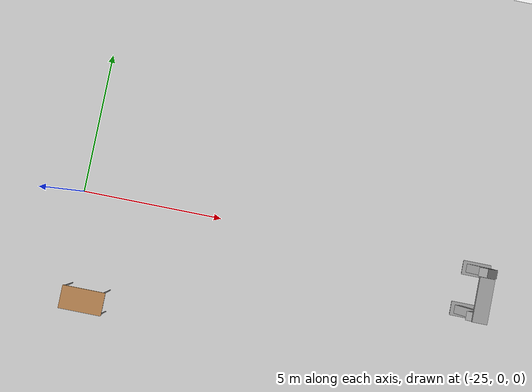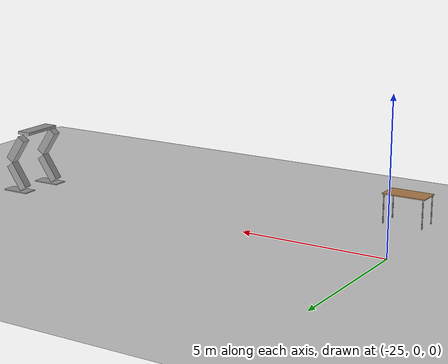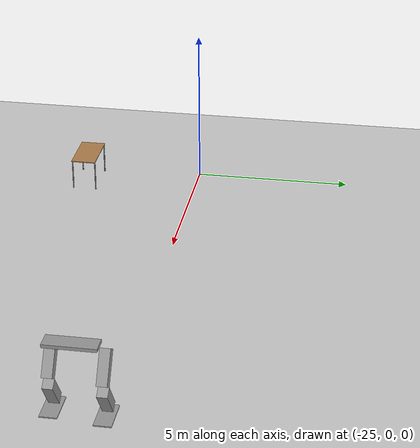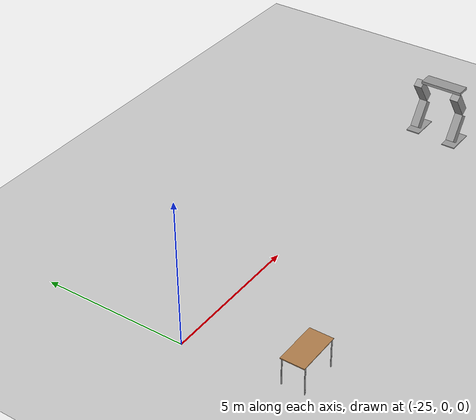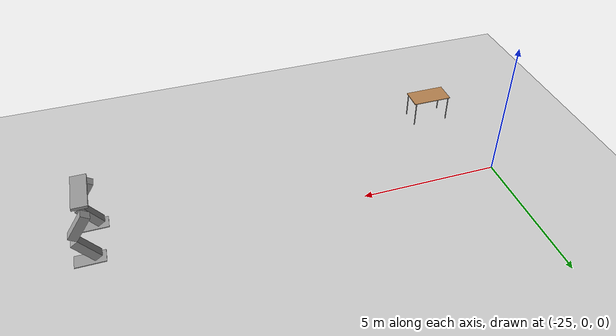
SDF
<sdf version="1.6">
 <world name="default">
  <model name="ground_plane">
   <static>1</static>
   <link name="link">
    <collision name="collision">
     <geometry><plane><normal>0 0 1</normal><size>100 100</size></plane></geometry>
     <surface>
      <contact><collide_bitmask>65535</collide_bitmask></contact>
      <friction><ode><mu>100</mu><mu2>50</mu2></ode></friction>
     </surface>
    </collision>
    <visual name="visual">
     <cast_shadows>0</cast_shadows>
     <geometry><plane><normal>0 0 1</normal><size>100 100</size></plane></geometry>
     <material>
      <script><uri>file://media/materials/scripts/gazebo.material</uri><name>Gazebo/Grey</name></script>
     </material>
    </visual>
   </link>
  </model>
  <model name="Humanoid_0">
   <link name="link_0">
    <pose>-0.048492 0.285713 -0.132344 0 -0 0</pose>
    <inertial>
     <mass>1</mass>
     <inertia>
      <ixx>0.166667</ixx>
      <ixy>0</ixy>
      <ixz>0</ixz>
      <iyy>0.166667</iyy>
      <iyz>0</iyz>
      <izz>0.166667</izz>
     </inertia>
    </inertial>
    <visual name="visual">
     <geometry><box><size>1 0.5 0.3</size></box></geometry>
     <material>
      <lighting>1</lighting>
      <script><uri>file://media/materials/scripts/gazebo.material</uri><name>Gazebo/Grey</name></script>
      <shader type="pixel"><normal_map>__default__</normal_map></shader>
      <ambient>0.3 0.3 0.3 1</ambient>
      <diffuse>0.7 0.7 0.7 1</diffuse>
      <specular>0.01 0.01 0.01 1</specular>
      <emissive>0 0 0 1</emissive>
     </material>
    </visual>
    <collision name="collision">
     <geometry><box><size>1 0.5 0.3</size></box></geometry>
     <surface>
      <friction>
       <ode><mu>1</mu><mu2>1</mu2><fdir1>0 0 0</fdir1><slip1>0</slip1><slip2>0</slip2></ode>
       <torsional>
        <coefficient>1</coefficient>
        <patch_radius>0</patch_radius>
        <surface_radius>0</surface_radius>
        <use_patch_radius>1</use_patch_radius>
        <ode><slip>0</slip></ode>
       </torsional>
      </friction>
      <bounce><restitution_coefficient>0</restitution_coefficient><threshold>1e+06</threshold></bounce>
      <contact>
       <collide_without_contact>0</collide_without_contact>
       <collide_without_contact_bitmask>1</collide_without_contact_bitmask>
       <collide_bitmask>1</collide_bitmask>
       <ode>
        <soft_cfm>0</soft_cfm>
        <soft_erp>0.2</soft_erp>
        <kp>1e+13</kp>
        <kd>1</kd>
        <max_vel>0.01</max_vel>
        <min_depth>0</min_depth>
       </ode>
       <bullet>
        <split_impulse>1</split_impulse>
        <split_impulse_penetration_threshold>-0.01</split_impulse_penetration_threshold>
        <soft_cfm>0</soft_cfm>
        <soft_erp>0.2</soft_erp>
        <kp>1e+13</kp>
        <kd>1</kd>
       </bullet>
      </contact>
     </surface>
    </collision>
   </link>
   <link name="link_0_clone">
    <pose>0.107629 1.78606 -0.132344 0 -0 0</pose>
    <inertial>
     <mass>1</mass>
     <inertia>
      <ixx>0.166667</ixx>
      <ixy>0</ixy>
      <ixz>0</ixz>
      <iyy>0.166667</iyy>
      <iyz>0</iyz>
      <izz>0.166667</izz>
     </inertia>
    </inertial>
    <visual name="visual">
     <geometry><box><size>1 0.5 0.3</size></box></geometry>
     <material>
      <lighting>1</lighting>
      <script><uri>file://media/materials/scripts/gazebo.material</uri><name>Gazebo/Grey</name></script>
      <shader type="pixel"><normal_map>__default__</normal_map></shader>
      <ambient>0.3 0.3 0.3 1</ambient>
      <diffuse>0.7 0.7 0.7 1</diffuse>
      <specular>0.01 0.01 0.01 1</specular>
      <emissive>0 0 0 1</emissive>
     </material>
    </visual>
    <collision name="collision">
     <geometry><box><size>1 0.5 0.3</size></box></geometry>
     <surface>
      <friction>
       <ode><mu>1</mu><mu2>1</mu2><fdir1>0 0 0</fdir1><slip1>0</slip1><slip2>0</slip2></ode>
       <torsional>
        <coefficient>1</coefficient>
        <patch_radius>0</patch_radius>
        <surface_radius>0</surface_radius>
        <use_patch_radius>1</use_patch_radius>
        <ode><slip>0</slip></ode>
       </torsional>
      </friction>
      <bounce><restitution_coefficient>0</restitution_coefficient><threshold>1e+06</threshold></bounce>
      <contact>
       <collide_without_contact>0</collide_without_contact>
       <collide_without_contact_bitmask>1</collide_without_contact_bitmask>
       <collide_bitmask>1</collide_bitmask>
       <ode>
        <soft_cfm>0</soft_cfm>
        <soft_erp>0.2</soft_erp>
        <kp>1e+13</kp>
        <kd>1</kd>
        <max_vel>0.01</max_vel>
        <min_depth>0</min_depth>
       </ode>
       <bullet>
        <split_impulse>1</split_impulse>
        <split_impulse_penetration_threshold>-0.01</split_impulse_penetration_threshold>
        <soft_cfm>0</soft_cfm>
        <soft_erp>0.2</soft_erp>
        <kp>1e+13</kp>
        <kd>1</kd>
       </bullet>
      </contact>
     </surface>
    </collision>
   </link>
   <link name="link_1">
    <pose>-0.048492 0.285713 0.51502 0 0.6 0</pose>
    <inertial>
     <mass>1</mass>
     <inertia>
      <ixx>0.166667</ixx>
      <ixy>0</ixy>
      <ixz>0</ixz>
      <iyy>0.166667</iyy>
      <iyz>0</iyz>
      <izz>0.166667</izz>
     </inertia>
    </inertial>
    <visual name="visual">
     <geometry><box><size>0.3 0.3 1</size></box></geometry>
     <material>
      <lighting>1</lighting>
      <script><uri>file://media/materials/scripts/gazebo.material</uri><name>Gazebo/Grey</name></script>
      <shader type="pixel"><normal_map>__default__</normal_map></shader>
      <ambient>0.3 0.3 0.3 1</ambient>
      <diffuse>0.7 0.7 0.7 1</diffuse>
      <specular>0.01 0.01 0.01 1</specular>
      <emissive>0 0 0 1</emissive>
     </material>
    </visual>
    <collision name="collision">
     <geometry><box><size>0.3 0.3 1</size></box></geometry>
     <surface>
      <friction>
       <ode><mu>1</mu><mu2>1</mu2><fdir1>0 0 0</fdir1><slip1>0</slip1><slip2>0</slip2></ode>
       <torsional>
        <coefficient>1</coefficient>
        <patch_radius>0</patch_radius>
        <surface_radius>0</surface_radius>
        <use_patch_radius>1</use_patch_radius>
        <ode><slip>0</slip></ode>
       </torsional>
      </friction>
      <bounce><restitution_coefficient>0</restitution_coefficient><threshold>1e+06</threshold></bounce>
      <contact>
       <collide_without_contact>0</collide_without_contact>
       <collide_without_contact_bitmask>1</collide_without_contact_bitmask>
       <collide_bitmask>1</collide_bitmask>
       <ode>
        <soft_cfm>0</soft_cfm>
        <soft_erp>0.2</soft_erp>
        <kp>1e+13</kp>
        <kd>1</kd>
        <max_vel>0.01</max_vel>
        <min_depth>0</min_depth>
       </ode>
       <bullet>
        <split_impulse>1</split_impulse>
        <split_impulse_penetration_threshold>-0.01</split_impulse_penetration_threshold>
        <soft_cfm>0</soft_cfm>
        <soft_erp>0.2</soft_erp>
        <kp>1e+13</kp>
        <kd>1</kd>
       </bullet>
      </contact>
     </surface>
    </collision>
   </link>
   <link name="link_1_clone">
    <pose>-0.048492 0.285713 1.50975 0 -0.6 0</pose>
    <inertial>
     <mass>1</mass>
     <inertia>
      <ixx>0.166667</ixx>
      <ixy>0</ixy>
      <ixz>0</ixz>
      <iyy>0.166667</iyy>
      <iyz>0</iyz>
      <izz>0.166667</izz>
     </inertia>
    </inertial>
    <visual name="visual">
     <geometry><box><size>0.3 0.3 1</size></box></geometry>
     <material>
      <lighting>1</lighting>
      <script><uri>file://media/materials/scripts/gazebo.material</uri><name>Gazebo/Grey</name></script>
      <shader type="pixel"><normal_map>__default__</normal_map></shader>
      <ambient>0.3 0.3 0.3 1</ambient>
      <diffuse>0.7 0.7 0.7 1</diffuse>
      <specular>0.01 0.01 0.01 1</specular>
      <emissive>0 0 0 1</emissive>
     </material>
    </visual>
    <collision name="collision">
     <geometry><box><size>0.3 0.3 1</size></box></geometry>
     <surface>
      <friction>
       <ode><mu>1</mu><mu2>1</mu2><fdir1>0 0 0</fdir1><slip1>0</slip1><slip2>0</slip2></ode>
       <torsional>
        <coefficient>1</coefficient>
        <patch_radius>0</patch_radius>
        <surface_radius>0</surface_radius>
        <use_patch_radius>1</use_patch_radius>
        <ode><slip>0</slip></ode>
       </torsional>
      </friction>
      <bounce><restitution_coefficient>0</restitution_coefficient><threshold>1e+06</threshold></bounce>
      <contact>
       <collide_without_contact>0</collide_without_contact>
       <collide_without_contact_bitmask>1</collide_without_contact_bitmask>
       <collide_bitmask>1</collide_bitmask>
       <ode>
        <soft_cfm>0</soft_cfm>
        <soft_erp>0.2</soft_erp>
        <kp>1e+13</kp>
        <kd>1</kd>
        <max_vel>0.01</max_vel>
        <min_depth>0</min_depth>
       </ode>
       <bullet>
        <split_impulse>1</split_impulse>
        <split_impulse_penetration_threshold>-0.01</split_impulse_penetration_threshold>
        <soft_cfm>0</soft_cfm>
        <soft_erp>0.2</soft_erp>
        <kp>1e+13</kp>
        <kd>1</kd>
       </bullet>
      </contact>
     </surface>
    </collision>
   </link>
   <link name="link_1_clone_0">
    <pose>0.107629 1.78606 0.51502 0 0.6 0</pose>
    <inertial>
     <mass>1</mass>
     <inertia>
      <ixx>0.166667</ixx>
      <ixy>0</ixy>
      <ixz>0</ixz>
      <iyy>0.166667</iyy>
      <iyz>0</iyz>
      <izz>0.166667</izz>
     </inertia>
    </inertial>
    <visual name="visual">
     <geometry><box><size>0.3 0.3 1</size></box></geometry>
     <material>
      <lighting>1</lighting>
      <script><uri>file://media/materials/scripts/gazebo.material</uri><name>Gazebo/Grey</name></script>
      <shader type="pixel"><normal_map>__default__</normal_map></shader>
      <ambient>0.3 0.3 0.3 1</ambient>
      <diffuse>0.7 0.7 0.7 1</diffuse>
      <specular>0.01 0.01 0.01 1</specular>
      <emissive>0 0 0 1</emissive>
     </material>
    </visual>
    <collision name="collision">
     <geometry><box><size>0.3 0.3 1</size></box></geometry>
     <surface>
      <friction>
       <ode><mu>1</mu><mu2>1</mu2><fdir1>0 0 0</fdir1><slip1>0</slip1><slip2>0</slip2></ode>
       <torsional>
        <coefficient>1</coefficient>
        <patch_radius>0</patch_radius>
        <surface_radius>0</surface_radius>
        <use_patch_radius>1</use_patch_radius>
        <ode><slip>0</slip></ode>
       </torsional>
      </friction>
      <bounce><restitution_coefficient>0</restitution_coefficient><threshold>1e+06</threshold></bounce>
      <contact>
       <collide_without_contact>0</collide_without_contact>
       <collide_without_contact_bitmask>1</collide_without_contact_bitmask>
       <collide_bitmask>1</collide_bitmask>
       <ode>
        <soft_cfm>0</soft_cfm>
        <soft_erp>0.2</soft_erp>
        <kp>1e+13</kp>
        <kd>1</kd>
        <max_vel>0.01</max_vel>
        <min_depth>0</min_depth>
       </ode>
       <bullet>
        <split_impulse>1</split_impulse>
        <split_impulse_penetration_threshold>-0.01</split_impulse_penetration_threshold>
        <soft_cfm>0</soft_cfm>
        <soft_erp>0.2</soft_erp>
        <kp>1e+13</kp>
        <kd>1</kd>
       </bullet>
      </contact>
     </surface>
    </collision>
   </link>
   <link name="link_1_clone_clone">
    <pose>0.107629 1.78606 1.50975 0 -0.6 0</pose>
    <inertial>
     <mass>1</mass>
     <inertia>
      <ixx>0.166667</ixx>
      <ixy>0</ixy>
      <ixz>0</ixz>
      <iyy>0.166667</iyy>
      <iyz>0</iyz>
      <izz>0.166667</izz>
     </inertia>
    </inertial>
    <visual name="visual">
     <geometry><box><size>0.3 0.3 1</size></box></geometry>
     <material>
      <lighting>1</lighting>
      <script><uri>file://media/materials/scripts/gazebo.material</uri><name>Gazebo/Grey</name></script>
      <shader type="pixel"><normal_map>__default__</normal_map></shader>
      <ambient>0.3 0.3 0.3 1</ambient>
      <diffuse>0.7 0.7 0.7 1</diffuse>
      <specular>0.01 0.01 0.01 1</specular>
      <emissive>0 0 0 1</emissive>
     </material>
    </visual>
    <collision name="collision">
     <geometry><box><size>0.3 0.3 1</size></box></geometry>
     <surface>
      <friction>
       <ode><mu>1</mu><mu2>1</mu2><fdir1>0 0 0</fdir1><slip1>0</slip1><slip2>0</slip2></ode>
       <torsional>
        <coefficient>1</coefficient>
        <patch_radius>0</patch_radius>
        <surface_radius>0</surface_radius>
        <use_patch_radius>1</use_patch_radius>
        <ode><slip>0</slip></ode>
       </torsional>
      </friction>
      <bounce><restitution_coefficient>0</restitution_coefficient><threshold>1e+06</threshold></bounce>
      <contact>
       <collide_without_contact>0</collide_without_contact>
       <collide_without_contact_bitmask>1</collide_without_contact_bitmask>
       <collide_bitmask>1</collide_bitmask>
       <ode>
        <soft_cfm>0</soft_cfm>
        <soft_erp>0.2</soft_erp>
        <kp>1e+13</kp>
        <kd>1</kd>
        <max_vel>0.01</max_vel>
        <min_depth>0</min_depth>
       </ode>
       <bullet>
        <split_impulse>1</split_impulse>
        <split_impulse_penetration_threshold>-0.01</split_impulse_penetration_threshold>
        <soft_cfm>0</soft_cfm>
        <soft_erp>0.2</soft_erp>
        <kp>1e+13</kp>
        <kd>1</kd>
       </bullet>
      </contact>
     </surface>
    </collision>
   </link>
   <link name="link_2">
    <pose>-0.048492 0.885713 2.05711 0 -0 0</pose>
    <inertial>
     <mass>1</mass>
     <inertia>
      <ixx>0.166667</ixx>
      <ixy>0</ixy>
      <ixz>0</ixz>
      <iyy>0.166667</iyy>
      <iyz>0</iyz>
      <izz>0.166667</izz>
     </inertia>
    </inertial>
    <visual name="visual">
     <geometry><box><size>0.5 1.5 0.1</size></box></geometry>
     <material>
      <lighting>1</lighting>
      <script><uri>file://media/materials/scripts/gazebo.material</uri><name>Gazebo/Grey</name></script>
      <shader type="pixel"><normal_map>__default__</normal_map></shader>
      <ambient>0.3 0.3 0.3 1</ambient>
      <diffuse>0.7 0.7 0.7 1</diffuse>
      <specular>0.01 0.01 0.01 1</specular>
      <emissive>0 0 0 1</emissive>
     </material>
    </visual>
    <collision name="collision">
     <geometry><box><size>0.5 1.5 0.1</size></box></geometry>
     <surface>
      <friction>
       <ode><mu>1</mu><mu2>1</mu2><fdir1>0 0 0</fdir1><slip1>0</slip1><slip2>0</slip2></ode>
       <torsional>
        <coefficient>1</coefficient>
        <patch_radius>0</patch_radius>
        <surface_radius>0</surface_radius>
        <use_patch_radius>1</use_patch_radius>
        <ode><slip>0</slip></ode>
       </torsional>
      </friction>
      <bounce><restitution_coefficient>0</restitution_coefficient><threshold>1e+06</threshold></bounce>
      <contact>
       <collide_without_contact>0</collide_without_contact>
       <collide_without_contact_bitmask>1</collide_without_contact_bitmask>
       <collide_bitmask>1</collide_bitmask>
       <ode>
        <soft_cfm>0</soft_cfm>
        <soft_erp>0.2</soft_erp>
        <kp>1e+13</kp>
        <kd>1</kd>
        <max_vel>0.01</max_vel>
        <min_depth>0</min_depth>
       </ode>
       <bullet>
        <split_impulse>1</split_impulse>
        <split_impulse_penetration_threshold>-0.01</split_impulse_penetration_threshold>
        <soft_cfm>0</soft_cfm>
        <soft_erp>0.2</soft_erp>
        <kp>1e+13</kp>
        <kd>1</kd>
       </bullet>
      </contact>
     </surface>
    </collision>
   </link>
   <joint name="link_1_JOINT_9" type="revolute">
    <parent>link_1</parent>
    <child>link_0</child>
    <axis>
     <xyz>1 0 0</xyz>
     <use_parent_model_frame>0</use_parent_model_frame>
     <limit>
      <lower>-1.79769e+308</lower>
      <upper>1.79769e+308</upper>
      <effort>-1</effort>
      <velocity>-1</velocity>
     </limit>
     <dynamics>
      <spring_reference>0</spring_reference>
      <spring_stiffness>0</spring_stiffness>
      <damping>0</damping>
      <friction>0</friction>
     </dynamics>
    </axis>
    <physics>
     <ode><limit><cfm>0</cfm><erp>0.2</erp></limit><suspension><cfm>0</cfm><erp>0.2</erp></suspension></ode>
    </physics>
   </joint>
   <joint name="link_1_clone_0_JOINT_10" type="revolute">
    <parent>link_1_clone_0</parent>
    <child>link_0_clone</child>
    <axis>
     <xyz>1 0 0</xyz>
     <use_parent_model_frame>0</use_parent_model_frame>
     <limit>
      <lower>-1.79769e+308</lower>
      <upper>1.79769e+308</upper>
      <effort>-1</effort>
      <velocity>-1</velocity>
     </limit>
     <dynamics>
      <spring_reference>0</spring_reference>
      <spring_stiffness>0</spring_stiffness>
      <damping>0</damping>
      <friction>0</friction>
     </dynamics>
    </axis>
    <physics>
     <ode><limit><cfm>0</cfm><erp>0.2</erp></limit><suspension><cfm>0</cfm><erp>0.2</erp></suspension></ode>
    </physics>
   </joint>
   <joint name="link_1_clone_JOINT_7" type="revolute">
    <parent>link_1_clone</parent>
    <child>link_1</child>
    <axis>
     <xyz>1 0 0</xyz>
     <use_parent_model_frame>0</use_parent_model_frame>
     <limit>
      <lower>-1.79769e+308</lower>
      <upper>1.79769e+308</upper>
      <effort>-1</effort>
      <velocity>-1</velocity>
     </limit>
     <dynamics>
      <spring_reference>0</spring_reference>
      <spring_stiffness>0</spring_stiffness>
      <damping>0</damping>
      <friction>0</friction>
     </dynamics>
    </axis>
    <physics>
     <ode><limit><cfm>0</cfm><erp>0.2</erp></limit><suspension><cfm>0</cfm><erp>0.2</erp></suspension></ode>
    </physics>
   </joint>
   <joint name="link_1_clone_clone_JOINT_8" type="revolute">
    <parent>link_1_clone_clone</parent>
    <child>link_1_clone_0</child>
    <axis>
     <xyz>1 0 0</xyz>
     <use_parent_model_frame>0</use_parent_model_frame>
     <limit>
      <lower>-1.79769e+308</lower>
      <upper>1.79769e+308</upper>
      <effort>-1</effort>
      <velocity>-1</velocity>
     </limit>
     <dynamics>
      <spring_reference>0</spring_reference>
      <spring_stiffness>0</spring_stiffness>
      <damping>0</damping>
      <friction>0</friction>
     </dynamics>
    </axis>
    <physics>
     <ode><limit><cfm>0</cfm><erp>0.2</erp></limit><suspension><cfm>0</cfm><erp>0.2</erp></suspension></ode>
    </physics>
   </joint>
   <joint name="link_2_JOINT_5" type="revolute">
    <parent>link_2</parent>
    <child>link_1_clone</child>
    <axis>
     <xyz>1 0 0</xyz>
     <use_parent_model_frame>0</use_parent_model_frame>
     <limit>
      <lower>-1.79769e+308</lower>
      <upper>1.79769e+308</upper>
      <effort>-1</effort>
      <velocity>-1</velocity>
     </limit>
     <dynamics>
      <spring_reference>0</spring_reference>
      <spring_stiffness>0</spring_stiffness>
      <damping>0</damping>
      <friction>0</friction>
     </dynamics>
    </axis>
    <physics>
     <ode><limit><cfm>0</cfm><erp>0.2</erp></limit><suspension><cfm>0</cfm><erp>0.2</erp></suspension></ode>
    </physics>
   </joint>
   <joint name="link_2_JOINT_6" type="revolute">
    <parent>link_2</parent>
    <child>link_1_clone_clone</child>
    <axis>
     <xyz>1 0 0</xyz>
     <use_parent_model_frame>0</use_parent_model_frame>
     <limit>
      <lower>-1.79769e+308</lower>
      <upper>1.79769e+308</upper>
      <effort>-1</effort>
      <velocity>-1</velocity>
     </limit>
     <dynamics>
      <spring_reference>0</spring_reference>
      <spring_stiffness>0</spring_stiffness>
      <damping>0</damping>
      <friction>0</friction>
     </dynamics>
    </axis>
    <physics>
     <ode><limit><cfm>0</cfm><erp>0.2</erp></limit><suspension><cfm>0</cfm><erp>0.2</erp></suspension></ode>
    </physics>
   </joint>
   <static>1</static>
   <pose>-10.816 -1.78879 0 0 -0 0</pose>
  </model>
  <model name="table">
   <static>1</static>
   <link name="link">
    <collision name="surface">
     <pose>0 0 1 0 -0 0</pose>
     <geometry><box><size>1.5 0.8 0.03</size></box></geometry>
     <surface><friction><ode><mu>0.6</mu><mu2>0.6</mu2></ode></friction></surface>
    </collision>
    <visual name="visual1">
     <pose>0 0 1 0 -0 0</pose>
     <geometry><box><size>1.5 0.8 0.03</size></box></geometry>
     <material>
      <script><uri>file://media/materials/scripts/gazebo.material</uri><name>Gazebo/Wood</name></script>
     </material>
    </visual>
    <collision name="front_left_leg">
     <pose>0.68 0.38 0.5 0 -0 0</pose>
     <geometry><cylinder><radius>0.02</radius><length>1</length></cylinder></geometry>
    </collision>
    <visual name="front_left_leg">
     <pose>0.68 0.38 0.5 0 -0 0</pose>
     <geometry><cylinder><radius>0.02</radius><length>1</length></cylinder></geometry>
     <material>
      <script><uri>file://media/materials/scripts/gazebo.material</uri><name>Gazebo/Grey</name></script>
     </material>
    </visual>
    <collision name="front_right_leg">
     <pose>0.68 -0.38 0.5 0 -0 0</pose>
     <geometry><cylinder><radius>0.02</radius><length>1</length></cylinder></geometry>
    </collision>
    <visual name="front_right_leg">
     <pose>0.68 -0.38 0.5 0 -0 0</pose>
     <geometry><cylinder><radius>0.02</radius><length>1</length></cylinder></geometry>
     <material>
      <script><uri>file://media/materials/scripts/gazebo.material</uri><name>Gazebo/Grey</name></script>
     </material>
    </visual>
    <collision name="back_right_leg">
     <pose>-0.68 -0.38 0.5 0 -0 0</pose>
     <geometry><cylinder><radius>0.02</radius><length>1</length></cylinder></geometry>
    </collision>
    <visual name="back_right_leg">
     <pose>-0.68 -0.38 0.5 0 -0 0</pose>
     <geometry><cylinder><radius>0.02</radius><length>1</length></cylinder></geometry>
     <material>
      <script><uri>file://media/materials/scripts/gazebo.material</uri><name>Gazebo/Grey</name></script>
     </material>
    </visual>
    <collision name="back_left_leg">
     <pose>-0.68 0.38 0.5 0 -0 0</pose>
     <geometry><cylinder><radius>0.02</radius><length>1</length></cylinder></geometry>
    </collision>
    <visual name="back_left_leg">
     <pose>-0.68 0.38 0.5 0 -0 0</pose>
     <geometry><cylinder><radius>0.02</radius><length>1</length></cylinder></geometry>
     <material>
      <script><uri>file://media/materials/scripts/gazebo.material</uri><name>Gazebo/Grey</name></script>
     </material>
    </visual>
   </link>
   <pose>-24.0446 -3.64922 0 0 -0 0</pose>
  </model>
 </world>
</sdf>
